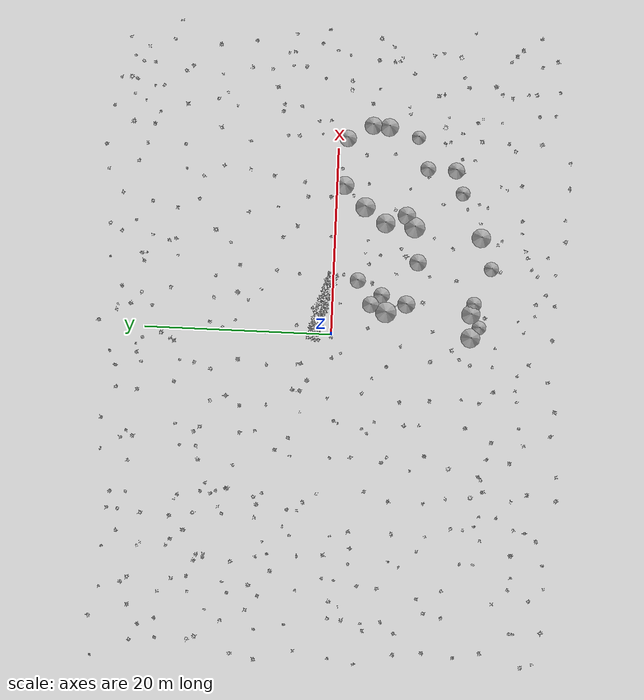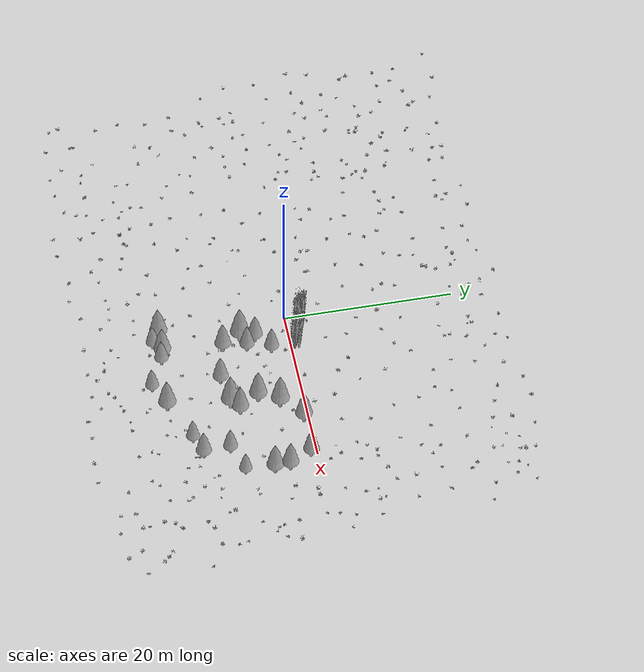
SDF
<sdf version="1.9">
 <world name="nomad_forest">
  <model name="forest_grass">
   <static>true</static>
   <link name="link">
    <visual name="visual_only"><geometry><mesh><uri>../assets/geometry/grass.obj</uri></mesh></geometry></visual>
   </link>
  </model>
  <model name="path_grass">
   <static>true</static>
   <link name="link">
    <visual name="visual_only">
     <geometry><mesh><uri>../assets/geometry/path_grass.obj</uri></mesh></geometry>
    </visual>
   </link>
  </model>
  <model name="meadow_grass">
   <static>true</static>
   <link name="link">
    <visual name="visual_only">
     <geometry><mesh><uri>../assets/geometry/meadow_grass.obj</uri></mesh></geometry>
    </visual>
   </link>
  </model>
  <model name="tree_0079">
   <static>true</static>
   <pose>1.4040343907407518 -15.725831270517384 -0.10772524546870592 0 0 -2.392526844625827</pose>
   <link name="link">
    <visual name="pine">
     <geometry>
      <mesh>
       <uri>../assets/models/pine_tree.obj</uri>
       <scale>0.8603425744427444 0.8603425744427444 0.8603425744427444</scale>
      </mesh>
     </geometry>
    </visual>
    <collision name="trunk">
     <pose>0 0 1.441073812191597 0 0 0</pose>
     <geometry><box><size>0.44 0.44 2.882147624383194</size></box></geometry>
    </collision>
   </link>
  </model>
  <model name="tree_0085">
   <static>true</static>
   <pose>4.414682843560055 -5.172826575479321 0.7079076270196714 0 0 2.240257303027585</pose>
   <link name="link">
    <visual name="pine">
     <geometry>
      <mesh>
       <uri>../assets/models/pine_tree.obj</uri>
       <scale>0.9675177079361967 0.9675177079361967 0.9675177079361967</scale>
      </mesh>
     </geometry>
    </visual>
    <collision name="trunk">
     <pose>0 0 1.6205921607931295 0 0 0</pose>
     <geometry><box><size>0.44 0.44 3.241184321586259</size></box></geometry>
    </collision>
   </link>
  </model>
  <model name="tree_0090">
   <static>true</static>
   <pose>8.09205933031451 -8.909802457598419 0.16759876982480915 0 0 0.543151040963163</pose>
   <link name="link">
    <visual name="pine">
     <geometry>
      <mesh>
       <uri>../assets/models/pine_tree.obj</uri>
       <scale>1.0219804891328 1.0219804891328 1.0219804891328</scale>
      </mesh>
     </geometry>
    </visual>
    <collision name="trunk">
     <pose>0 0 1.71181731929744 0 0 0</pose>
     <geometry><box><size>0.44 0.44 3.42363463859488</size></box></geometry>
    </collision>
   </link>
  </model>
  <model name="tree_0097">
   <static>true</static>
   <pose>12.103327871964035 -5.279304053281655 1.0596436875109276 0 0 2.910441953926141</pose>
   <link name="link">
    <visual name="pine">
     <geometry>
      <mesh>
       <uri>../assets/models/pine_tree.obj</uri>
       <scale>1.1519023268321797 1.1519023268321797 1.1519023268321797</scale>
      </mesh>
     </geometry>
    </visual>
    <collision name="trunk">
     <pose>0 0 1.929436397443901 0 0 0</pose>
     <geometry><box><size>0.44 0.44 3.858872794887802</size></box></geometry>
    </collision>
   </link>
  </model>
  <model name="tree_0108">
   <static>true</static>
   <pose>18.067166668847747 -12.598020962311223 0.052352232862963775 0 0 -3.0305764284153707</pose>
   <link name="link">
    <visual name="pine">
     <geometry>
      <mesh>
       <uri>../assets/models/pine_tree.obj</uri>
       <scale>1.0039759624250735 1.0039759624250735 1.0039759624250735</scale>
      </mesh>
     </geometry>
    </visual>
    <collision name="trunk">
     <pose>0 0 1.6816597370619981 0 0 0</pose>
     <geometry><box><size>0.44 0.44 3.3633194741239962</size></box></geometry>
    </collision>
   </link>
  </model>
  <model name="tree_0113">
   <static>true</static>
   <pose>21.43584275141814 -8.440225477670785 0.40124177072812606 0 0 -2.4944077020631195</pose>
   <link name="link">
    <visual name="pine">
     <geometry>
      <mesh>
       <uri>../assets/models/pine_tree.obj</uri>
       <scale>0.8184855919871812 0.8184855919871812 0.8184855919871812</scale>
      </mesh>
     </geometry>
    </visual>
    <collision name="trunk">
     <pose>0 0 1.3709633665785286 0 0 0</pose>
     <geometry><box><size>0.44 0.44 2.741926733157057</size></box></geometry>
    </collision>
   </link>
  </model>
  <model name="tree_0147">
   <static>true</static>
   <pose>7.70764392117114 -16.780587005585012 0.03342473015368693 0 0 -2.4795058111798234</pose>
   <link name="link">
    <visual name="pine">
     <geometry>
      <mesh>
       <uri>../assets/models/pine_tree.obj</uri>
       <scale>0.885928341494171 0.885928341494171 0.885928341494171</scale>
      </mesh>
     </geometry>
    </visual>
    <collision name="trunk">
     <pose>0 0 1.4839299720027364 0 0 0</pose>
     <geometry><box><size>0.44 0.44 2.9678599440054727</size></box></geometry>
    </collision>
   </link>
  </model>
  <model name="tree_0152">
   <static>true</static>
   <pose>18.13207483502385 -9.57056188500926 0.32670338482310907 0 0 2.345931137766924</pose>
   <link name="link">
    <visual name="pine">
     <geometry>
      <mesh>
       <uri>../assets/models/pine_tree.obj</uri>
       <scale>0.9186525355624718 0.9186525355624718 0.9186525355624718</scale>
      </mesh>
     </geometry>
    </visual>
    <collision name="trunk">
     <pose>0 0 1.5387429970671405 0 0 0</pose>
     <geometry><box><size>0.44 0.44 3.077485994134281</size></box></geometry>
    </collision>
   </link>
  </model>
  <model name="tree_0153">
   <static>true</static>
   <pose>2.785083350919912 -14.783711985202673 -0.20294977764239625 0 0 -0.6714789105508467</pose>
   <link name="link">
    <visual name="pine">
     <geometry>
      <mesh>
       <uri>../assets/models/pine_tree.obj</uri>
       <scale>1.1348528074091004 1.1348528074091004 1.1348528074091004</scale>
      </mesh>
     </geometry>
    </visual>
    <collision name="trunk">
     <pose>0 0 1.9008784524102433 0 0 0</pose>
     <geometry><box><size>0.44 0.44 3.8017569048204867</size></box></geometry>
    </collision>
   </link>
  </model>
  <model name="tree_0176">
   <static>true</static>
   <pose>15.652497003100407 -13.418253456045443 -0.05930626893724187 0 0 -1.4276371842760884</pose>
   <link name="link">
    <visual name="pine">
     <geometry>
      <mesh>
       <uri>../assets/models/pine_tree.obj</uri>
       <scale>0.8751090141221561 0.8751090141221561 0.8751090141221561</scale>
      </mesh>
     </geometry>
    </visual>
    <collision name="trunk">
     <pose>0 0 1.4658075986546115 0 0 0</pose>
     <geometry><box><size>0.44 0.44 2.931615197309223</size></box></geometry>
    </collision>
   </link>
  </model>
  <model name="tree_0191">
   <static>true</static>
   <pose>3.8818119574392824 -15.08116833013731 -0.1290276752715569 0 0 -2.3627623723663453</pose>
   <link name="link">
    <visual name="pine">
     <geometry>
      <mesh>
       <uri>../assets/models/pine_tree.obj</uri>
       <scale>0.917618205168787 0.917618205168787 0.917618205168787</scale>
      </mesh>
     </geometry>
    </visual>
    <collision name="trunk">
     <pose>0 0 1.5370104936577182 0 0 0</pose>
     <geometry><box><size>0.44 0.44 3.0740209873154365</size></box></geometry>
    </collision>
   </link>
  </model>
  <model name="tree_0192">
   <static>true</static>
   <pose>22.435816932964407 -3.536446098520699 1.346411810773645 0 0 2.1371616142582996</pose>
   <link name="link">
    <visual name="pine">
     <geometry>
      <mesh>
       <uri>../assets/models/pine_tree.obj</uri>
       <scale>1.0605517183830016 1.0605517183830016 1.0605517183830016</scale>
      </mesh>
     </geometry>
    </visual>
    <collision name="trunk">
     <pose>0 0 1.7764241282915276 0 0 0</pose>
     <geometry><box><size>0.44 0.44 3.5528482565830553</size></box></geometry>
    </collision>
   </link>
  </model>
  <model name="tree_0216">
   <static>true</static>
   <pose>13.029466758064487 -7.4994979961646635 0.40771615344331275 0 0 -0.6609565583672433</pose>
   <link name="link">
    <visual name="pine">
     <geometry>
      <mesh>
       <uri>../assets/models/pine_tree.obj</uri>
       <scale>1.0804515140659818 1.0804515140659818 1.0804515140659818</scale>
      </mesh>
     </geometry>
    </visual>
    <collision name="trunk">
     <pose>0 0 1.8097562860605196 0 0 0</pose>
     <geometry><box><size>0.44 0.44 3.6195125721210393</size></box></geometry>
    </collision>
   </link>
  </model>
  <model name="tree_0219">
   <static>true</static>
   <pose>5.891831122757075 -2.566269529153974 1.616724829270093 0 0 2.428343281246423</pose>
   <link name="link">
    <visual name="pine">
     <geometry>
      <mesh>
       <uri>../assets/models/pine_tree.obj</uri>
       <scale>0.9507468448184051 0.9507468448184051 0.9507468448184051</scale>
      </mesh>
     </geometry>
    </visual>
    <collision name="trunk">
     <pose>0 0 1.5925009650708286 0 0 0</pose>
     <geometry><box><size>0.44 0.44 3.1850019301416572</size></box></geometry>
    </collision>
   </link>
  </model>
  <model name="tree_0223">
   <static>true</static>
   <pose>3.5714122232063303 -7.847086014846624 0.2693950579100194 0 0 1.6739985761373477</pose>
   <link name="link">
    <visual name="pine">
     <geometry>
      <mesh>
       <uri>../assets/models/pine_tree.obj</uri>
       <scale>1.0687225007619128 1.0687225007619128 1.0687225007619128</scale>
      </mesh>
     </geometry>
    </visual>
    <collision name="trunk">
     <pose>0 0 1.7901101887762039 0 0 0</pose>
     <geometry><box><size>0.44 0.44 3.5802203775524077</size></box></geometry>
    </collision>
   </link>
  </model>
  <model name="tree_0231">
   <static>true</static>
   <pose>3.3841151539106704 -4.038452106920012 0.9304253747921445 0 0 1.4754345514062956</pose>
   <link name="link">
    <visual name="pine">
     <geometry>
      <mesh>
       <uri>../assets/models/pine_tree.obj</uri>
       <scale>0.9932701134580739 0.9932701134580739 0.9932701134580739</scale>
      </mesh>
     </geometry>
    </visual>
    <collision name="trunk">
     <pose>0 0 1.663727440042274 0 0 0</pose>
     <geometry><box><size>0.44 0.44 3.327454880084548</size></box></geometry>
    </collision>
   </link>
  </model>
  <model name="tree_0247">
   <static>true</static>
   <pose>0.2525014534112273 -14.832146084386185 0.06953143166794434 0 0 -2.6069408954723325</pose>
   <link name="link">
    <visual name="pine">
     <geometry>
      <mesh>
       <uri>../assets/models/pine_tree.obj</uri>
       <scale>1.174752536826116 1.174752536826116 1.174752536826116</scale>
      </mesh>
     </geometry>
    </visual>
    <collision name="trunk">
     <pose>0 0 1.9677104991837444 0 0 0</pose>
     <geometry><box><size>0.44 0.44 3.935420998367489</size></box></geometry>
    </collision>
   </link>
  </model>
  <model name="tree_0251">
   <static>true</static>
   <pose>13.699619075341737 -3.042225267053965 1.559821026472925 0 0 -1.2268518511477637</pose>
   <link name="link">
    <visual name="pine">
     <geometry>
      <mesh>
       <uri>../assets/models/pine_tree.obj</uri>
       <scale>1.1880056277578614 1.1880056277578614 1.1880056277578614</scale>
      </mesh>
     </geometry>
    </visual>
    <collision name="trunk">
     <pose>0 0 1.989909426494418 0 0 0</pose>
     <geometry><box><size>0.44 0.44 3.979818852988836</size></box></geometry>
    </collision>
   </link>
  </model>
  <model name="tree_0284">
   <static>true</static>
   <pose>11.793799275893171 -8.406197066076885 0.2459625767397464 0 0 -0.6965182571923398</pose>
   <link name="link">
    <visual name="pine">
     <geometry>
      <mesh>
       <uri>../assets/models/pine_tree.obj</uri>
       <scale>1.2410247262921887 1.2410247262921887 1.2410247262921887</scale>
      </mesh>
     </geometry>
    </visual>
    <collision name="trunk">
     <pose>0 0 2.0787164165394163 0 0 0</pose>
     <geometry><box><size>0.44 0.44 4.157432833078833</size></box></geometry>
    </collision>
   </link>
  </model>
  <model name="tree_0286">
   <static>true</static>
   <pose>22.340683598575694 -5.261456083873803 1.1045369758576924 0 0 0.014767595946817062</pose>
   <link name="link">
    <visual name="pine">
     <geometry>
      <mesh>
       <uri>../assets/models/pine_tree.obj</uri>
       <scale>1.0940198513512764 1.0940198513512764 1.0940198513512764</scale>
      </mesh>
     </geometry>
    </visual>
    <collision name="trunk">
     <pose>0 0 1.8324832510133882 0 0 0</pose>
     <geometry><box><size>0.44 0.44 3.6649665020267763</size></box></geometry>
    </collision>
   </link>
  </model>
  <model name="tree_0309">
   <static>true</static>
   <pose>2.6164696520319524 -5.6826839127366355 0.49743764665509904 0 0 0.28824727686623214</pose>
   <link name="link">
    <visual name="pine">
     <geometry>
      <mesh>
       <uri>../assets/models/pine_tree.obj</uri>
       <scale>1.2628211975265304 1.2628211975265304 1.2628211975265304</scale>
      </mesh>
     </geometry>
    </visual>
    <collision name="trunk">
     <pose>0 0 2.1152255058569387 0 0 0</pose>
     <geometry><box><size>0.44 0.44 4.230451011713877</size></box></geometry>
    </collision>
   </link>
  </model>
  <model name="tree_0326">
   <static>true</static>
   <pose>10.958725189237597 -15.54086098794017 0.4017986430366064 0 0 -0.5865212261878856</pose>
   <link name="link">
    <visual name="pine">
     <geometry>
      <mesh>
       <uri>../assets/models/pine_tree.obj</uri>
       <scale>1.1512099564214517 1.1512099564214517 1.1512099564214517</scale>
      </mesh>
     </geometry>
    </visual>
    <collision name="trunk">
     <pose>0 0 1.9282766770059316 0 0 0</pose>
     <geometry><box><size>0.44 0.44 3.8565533540118633</size></box></geometry>
    </collision>
   </link>
  </model>
  <model name="tree_0343">
   <static>true</static>
   <pose>20.969345587338566 -0.9013935639983117 1.2232995107710196 0 0 -0.9781201358210575</pose>
   <link name="link">
    <visual name="pine">
     <geometry>
      <mesh>
       <uri>../assets/models/pine_tree.obj</uri>
       <scale>1.016487188122402 1.016487188122402 1.016487188122402</scale>
      </mesh>
     </geometry>
    </visual>
    <collision name="trunk">
     <pose>0 0 1.7026160401050234 0 0 0</pose>
     <geometry><box><size>0.44 0.44 3.405232080210047</size></box></geometry>
    </collision>
   </link>
  </model>
  <model name="tree_0346">
   <static>true</static>
   <pose>15.948585298555798 -0.751148756319413 1.1411354928920625 0 0 1.825296000914418</pose>
   <link name="link">
    <visual name="pine">
     <geometry>
      <mesh>
       <uri>../assets/models/pine_tree.obj</uri>
       <scale>1.1104232589906897 1.1104232589906897 1.1104232589906897</scale>
      </mesh>
     </geometry>
    </visual>
    <collision name="trunk">
     <pose>0 0 1.8599589588094054 0 0 0</pose>
     <geometry><box><size>0.44 0.44 3.719917917618811</size></box></geometry>
    </collision>
   </link>
  </model>
 </world>
</sdf>
